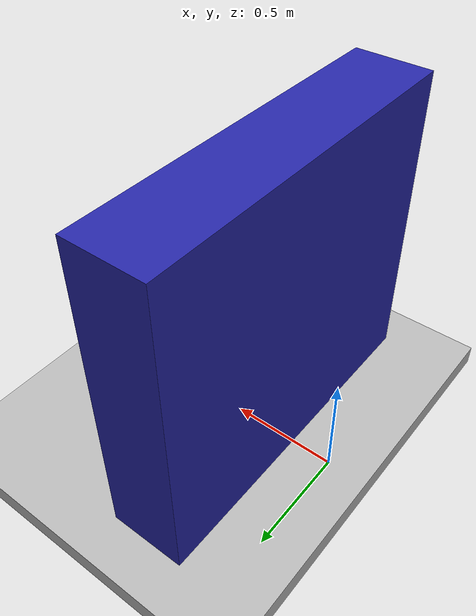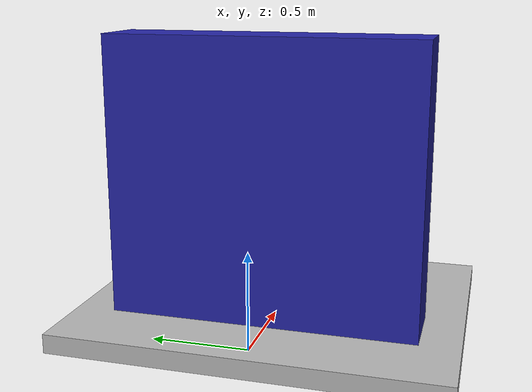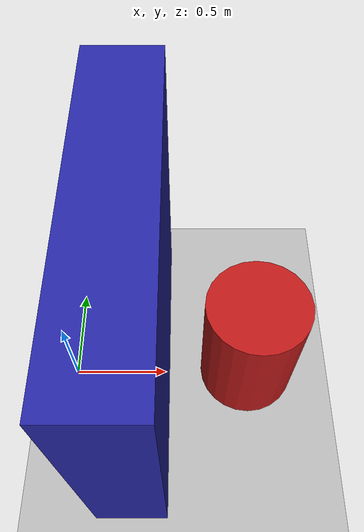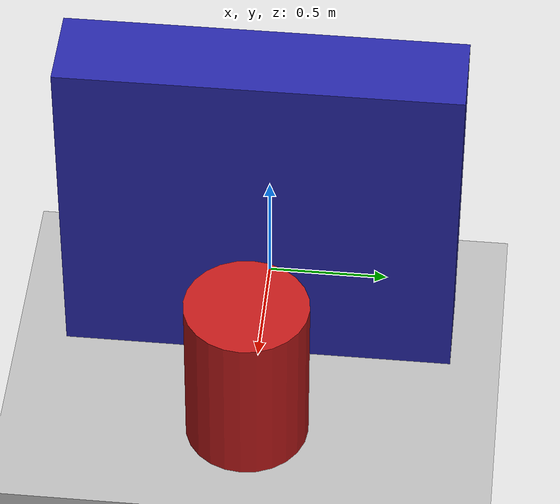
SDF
<?xml version="1.0"?>
<sdf version="1.6">
  <world name="cs625_static">
    <physics name="1ms" type="ignored">
      <max_step_size>0.001</max_step_size><real_time_factor>1.0</real_time_factor>
    </physics>
    <plugin filename="ignition-gazebo-physics-system" name="gz::sim::systems::Physics"/>
    <plugin filename="ignition-gazebo-sensors-system" name="gz::sim::systems::Sensors">
      <render_engine>ogre2</render_engine>
    </plugin>
    <plugin filename="ignition-gazebo-scene-broadcaster-system" name="gz::sim::systems::SceneBroadcaster"/>
    <light type="directional" name="sun">
      <pose>0 0 5 0 0 0</pose><diffuse>0.8 0.8 0.8 1</diffuse><specular>0.2 0.2 0.2 1</specular><direction>-0.5 0.1 -0.9</direction>
    </light>
    <model name="ground_plane"><static>true</static>
      <link name="link"><collision name="c"><geometry><box><size>10 10 0.1</size></box></geometry></collision><visual name="v"><geometry><box><size>10 10 0.1</size></box></geometry></visual></link>
    </model>
    <!-- Fixture camera as render-init trigger; keep at 64x64 1Hz, topic never bridged -->
    <model name="render_trigger"><static>true</static><pose>-10 10 0.5 0 0 0</pose>
      <link name="tlink"><sensor name="tcam" type="rgbd_camera"><camera><horizontal_fov>1.0</horizontal_fov><image><width>64</width><height>64</height></image><clip><near>0.1</near><far>10</far></clip></camera><always_on>1</always_on><update_rate>1</update_rate><visualize>0</visualize><topic>/render_trigger</topic><gz_frame_id>tlink</gz_frame_id></sensor></link>
    </model>
    <!-- Static occlusion scene -->
    <model name="occluder"><static>true</static><pose>0.35 0 0.75 0 0 0</pose>
      <link name="link"><collision name="c"><geometry><box><size>0.35 1.6 1.5</size></box></geometry></collision><visual name="v"><geometry><box><size>0.35 1.6 1.5</size></box></geometry><material><ambient>0.15 0.15 0.65 1</ambient><diffuse>0.15 0.15 0.65 1</diffuse></material></visual></link>
    </model>
    <model name="target_object"><static>true</static><pose>0.95 0 0.4 0 0 0</pose>
      <link name="target_link"><collision name="c"><geometry><cylinder><radius>0.25</radius><length>0.7</length></cylinder></geometry></collision><visual name="v"><geometry><cylinder><radius>0.25</radius><length>0.7</length></cylinder></geometry><material><ambient>0.75 0.1 0.1 1</ambient><diffuse>0.75 0.1 0.1 1</diffuse></material></visual></link>
    </model>
    <!-- ROBOT placeholder — inserted by sed below -->
<sdf version='1.9'>
  <model name='cs625'>
    <joint name='base_joint' type='fixed'>
      <pose relative_to='__model__'>0 0 0 0 0 0</pose>
      <parent>world</parent>
      <child>base_link</child>
    </joint>
    <link name='base_link'>
      <pose relative_to='base_joint'>0 0 0 0 0 0</pose>
      <inertial>
        <pose>-2.4008693014781e-05 0.00117748953656619 0.07629277704746289 0 0 0</pose>
        <mass>1.5056196875401799</mass>
        <inertia>
          <ixx>0.0067828912063113353</ixx>
          <ixy>2.67618063769984e-07</ixy>
          <ixz>-2.5689556417707202e-06</ixz>
          <iyy>0.0068523032153561536</iyy>
          <iyz>9.4262879047866778e-05</iyz>
          <izz>0.0100437671447022</izz>
        </inertia>
      </inertial>
      <collision name='base_link_inertia_collision'>
        <pose>0 0 0 0 0 0</pose>
        <geometry>
          <mesh>
            <scale>1 1 1</scale>
            <uri>file:///home/oy/cs625_underlay_humble/install/eli_cs_robot_description/share/eli_cs_robot_description/meshes/cs625/collision/base.stl</uri>
          </mesh>
        </geometry>
      </collision>
      <visual name='base_link_inertia_visual'>
        <pose>0 0 0 0 0 0</pose>
        <geometry>
          <mesh>
            <scale>1 1 1</scale>
            <uri>file:///home/oy/cs625_underlay_humble/install/eli_cs_robot_description/share/eli_cs_robot_description/meshes/cs625/visual/base.dae</uri>
          </mesh>
        </geometry>
      </visual>
    </link>
    <joint name='shoulder_pan_joint' type='revolute'>
      <pose relative_to='base_link'>0 0 0.231007 0 0 0</pose>
      <parent>base_link</parent>
      <child>shoulder_link</child>
      <axis>
        <xyz>0 0 1</xyz>
        <limit>
          <lower>-6.2831853071795862</lower>
          <upper>6.2831853071795862</upper>
          <effort>730</effort>
          <velocity>2.0943951023931948</velocity>
        </limit>
        <dynamics>
          <damping>0</damping>
          <friction>0</friction>
          <spring_reference>0</spring_reference>
          <spring_stiffness>0</spring_stiffness>
        </dynamics>
      </axis>
    </joint>
    <link name='shoulder_link'>
      <pose relative_to='shoulder_pan_joint'>0 0 0 0 0 0</pose>
      <inertial>
        <pose>9.899999999999999e-05 -0.026311 -0.026723 0 0 0</pose>
        <mass>17.039999999999999</mass>
        <inertia>
          <ixx>0.13028999999999999</ixx>
          <ixy>-8.2709999999999999e-05</ixy>
          <ixz>0.00010670000000000001</ixz>
          <iyy>0.085214999999999999</iyy>
          <iyz>-0.00066335000000000005</iyz>
          <izz>0.11386</izz>
        </inertia>
      </inertial>
      <collision name='shoulder_link_collision'>
        <pose>0 0 0 0 0 0</pose>
        <geometry>
          <mesh>
            <scale>1 1 1</scale>
            <uri>file:///home/oy/cs625_underlay_humble/install/eli_cs_robot_description/share/eli_cs_robot_description/meshes/cs625/collision/shoulder.stl</uri>
          </mesh>
        </geometry>
      </collision>
      <visual name='shoulder_link_visual'>
        <pose>0 0 0 0 0 0</pose>
        <geometry>
          <mesh>
            <scale>1 1 1</scale>
            <uri>file:///home/oy/cs625_underlay_humble/install/eli_cs_robot_description/share/eli_cs_robot_description/meshes/cs625/visual/shoulder.dae</uri>
          </mesh>
        </geometry>
      </visual>
    </link>
    <joint name='shoulder_lift_joint' type='revolute'>
      <pose relative_to='shoulder_link'>0 0 0 1.5707999 0 0</pose>
      <parent>shoulder_link</parent>
      <child>upperarm_link</child>
      <axis>
        <xyz>0 0 1</xyz>
        <limit>
          <lower>-6.2831853071795862</lower>
          <upper>6.2831853071795862</upper>
          <effort>730</effort>
          <velocity>2.0943951023931948</velocity>
        </limit>
        <dynamics>
          <damping>0</damping>
          <friction>0</friction>
          <spring_reference>0</spring_reference>
          <spring_stiffness>0</spring_stiffness>
        </dynamics>
      </axis>
    </joint>
    <link name='upperarm_link'>
      <pose relative_to='shoulder_lift_joint'>0 0 0 0 0 0</pose>
      <inertial>
        <pose>-0.27762 -1.7e-05 0.20184 0 0 0</pose>
        <mass>26.542999999999999</mass>
        <inertia>
          <ixx>1.1970000000000001</ixx>
          <ixy>-0.00083272000000000001</ixy>
          <ixz>-1.5396000000000001</ixz>
          <iyy>6.1116999999999999</iyy>
          <iyz>-0.00015495999999999999</iyz>
          <izz>5.0220000000000002</izz>
        </inertia>
      </inertial>
      <collision name='upperarm_link_collision'>
        <pose>0 0 0 0 0 0</pose>
        <geometry>
          <mesh>
            <scale>1 1 1</scale>
            <uri>file:///home/oy/cs625_underlay_humble/install/eli_cs_robot_description/share/eli_cs_robot_description/meshes/cs625/collision/upperarm.stl</uri>
          </mesh>
        </geometry>
      </collision>
      <visual name='upperarm_link_visual'>
        <pose>0 0 0 0 0 0</pose>
        <geometry>
          <mesh>
            <scale>1 1 1</scale>
            <uri>file:///home/oy/cs625_underlay_humble/install/eli_cs_robot_description/share/eli_cs_robot_description/meshes/cs625/visual/upperarm.dae</uri>
          </mesh>
        </geometry>
      </visual>
    </link>
    <joint name='elbow_joint' type='revolute'>
      <pose relative_to='upperarm_link'>-0.750517 0 0 0 0 0</pose>
      <parent>upperarm_link</parent>
      <child>forearm_link</child>
      <axis>
        <xyz>0 0 1</xyz>
        <limit>
          <lower>-3.1415926535897931</lower>
          <upper>3.1415926535897931</upper>
          <effort>430</effort>
          <velocity>2.617993877991494</velocity>
        </limit>
        <dynamics>
          <damping>0</damping>
          <friction>0</friction>
          <spring_reference>0</spring_reference>
          <spring_stiffness>0</spring_stiffness>
        </dynamics>
      </axis>
    </joint>
    <link name='forearm_link'>
      <pose relative_to='elbow_joint'>0 0 0 0 0 0</pose>
      <inertial>
        <pose>-0.30259 2.1e-05 0.07237 0 0 0</pose>
        <mass>7.8159999999999998</mass>
        <inertia>
          <ixx>0.067796999999999996</ixx>
          <ixy>4.4997000000000003e-05</ixy>
          <ixz>-0.12636</ixz>
          <iyy>1.3409</iyy>
          <iyz>1.45e-05</iyz>
          <izz>1.2907999999999999</izz>
        </inertia>
      </inertial>
      <collision name='forearm_link_collision'>
        <pose>0 0 0 0 0 0</pose>
        <geometry>
          <mesh>
            <scale>1 1 1</scale>
            <uri>file:///home/oy/cs625_underlay_humble/install/eli_cs_robot_description/share/eli_cs_robot_description/meshes/cs625/collision/forearm.stl</uri>
          </mesh>
        </geometry>
      </collision>
      <visual name='forearm_link_visual'>
        <pose>0 0 0 0 0 0</pose>
        <geometry>
          <mesh>
            <scale>1 1 1</scale>
            <uri>file:///home/oy/cs625_underlay_humble/install/eli_cs_robot_description/share/eli_cs_robot_description/meshes/cs625/visual/forearm.dae</uri>
          </mesh>
        </geometry>
      </visual>
    </link>
    <joint name='wrist_1_joint' type='revolute'>
      <pose relative_to='forearm_link'>-0.623098 0 0.171144 0 0 0</pose>
      <parent>forearm_link</parent>
      <child>wrist_1_link</child>
      <axis>
        <xyz>0 0 1</xyz>
        <limit>
          <lower>-6.2831853071795862</lower>
          <upper>6.2831853071795862</upper>
          <effort>100</effort>
          <velocity>3.6651914291880918</velocity>
        </limit>
        <dynamics>
          <damping>0</damping>
          <friction>0</friction>
          <spring_reference>0</spring_reference>
          <spring_stiffness>0</spring_stiffness>
        </dynamics>
      </axis>
    </joint>
    <link name='wrist_1_link'>
      <pose relative_to='wrist_1_joint'>0 0 0 0 0 0</pose>
      <inertial>
        <pose>-3.7e-05 -0.01051 -0.014865 0 0 0</pose>
        <mass>3.0950000000000002</mass>
        <inertia>
          <ixx>0.0079583999999999992</ixx>
          <ixy>-3.0240000000000002e-06</ixy>
          <ixz>5.7339999999999996e-06</ixz>
          <iyy>0.0066863000000000001</iyy>
          <iyz>1.766e-05</iyz>
          <izz>0.0048406999999999999</izz>
        </inertia>
      </inertial>
      <collision name='wrist_1_link_collision'>
        <pose>0 0 0 0 0 0</pose>
        <geometry>
          <mesh>
            <scale>1 1 1</scale>
            <uri>file:///home/oy/cs625_underlay_humble/install/eli_cs_robot_description/share/eli_cs_robot_description/meshes/cs625/collision/wrist1.stl</uri>
          </mesh>
        </geometry>
      </collision>
      <visual name='wrist_1_link_visual'>
        <pose>0 0 0 0 0 0</pose>
        <geometry>
          <mesh>
            <scale>1 1 1</scale>
            <uri>file:///home/oy/cs625_underlay_humble/install/eli_cs_robot_description/share/eli_cs_robot_description/meshes/cs625/visual/wrist1.dae</uri>
          </mesh>
        </geometry>
      </visual>
    </link>
    <joint name='wrist_2_joint' type='revolute'>
      <pose relative_to='wrist_1_link'>0 -0.127906 0 1.5707999 0 0</pose>
      <parent>wrist_1_link</parent>
      <child>wrist_2_link</child>
      <axis>
        <xyz>0 0 1</xyz>
        <limit>
          <lower>-6.2831853071795862</lower>
          <upper>6.2831853071795862</upper>
          <effort>100</effort>
          <velocity>3.6651914291880918</velocity>
        </limit>
        <dynamics>
          <damping>0</damping>
          <friction>0</friction>
          <spring_reference>0</spring_reference>
          <spring_stiffness>0</spring_stiffness>
        </dynamics>
      </axis>
    </joint>
    <link name='wrist_2_link'>
      <pose relative_to='wrist_2_joint'>0 0 0 0 0 0</pose>
      <inertial>
        <pose>3.7e-05 0.01051 -0.014865 0 0 0</pose>
        <mass>3.0950000000000002</mass>
        <inertia>
          <ixx>0.0079584129999999993</ixx>
          <ixy>-3.0240000000000002e-06</ixy>
          <ixz>5.7339999999999996e-06</ixz>
          <iyy>0.0066863479999999999</iyy>
          <iyz>1.766e-05</iyz>
          <izz>0.0048406710000000004</izz>
        </inertia>
      </inertial>
      <collision name='wrist_2_link_collision'>
        <pose>0 0 0 0 0 0</pose>
        <geometry>
          <mesh>
            <scale>1 1 1</scale>
            <uri>file:///home/oy/cs625_underlay_humble/install/eli_cs_robot_description/share/eli_cs_robot_description/meshes/cs625/collision/wrist2.stl</uri>
          </mesh>
        </geometry>
      </collision>
      <visual name='wrist_2_link_visual'>
        <pose>0 0 0 0 0 0</pose>
        <geometry>
          <mesh>
            <scale>1 1 1</scale>
            <uri>file:///home/oy/cs625_underlay_humble/install/eli_cs_robot_description/share/eli_cs_robot_description/meshes/cs625/visual/wrist2.dae</uri>
          </mesh>
        </geometry>
      </visual>
    </link>
    <joint name='wrist_3_joint' type='revolute'>
      <pose relative_to='wrist_2_link'>0 0.127478 0 -1.5707999 0 0</pose>
      <parent>wrist_2_link</parent>
      <child>wrist_3_link</child>
      <axis>
        <xyz>0 0 1</xyz>
        <limit>
          <lower>-6.2831853071795862</lower>
          <upper>6.2831853071795862</upper>
          <effort>100</effort>
          <velocity>3.6651914291880918</velocity>
        </limit>
        <dynamics>
          <damping>0</damping>
          <friction>0</friction>
          <spring_reference>0</spring_reference>
          <spring_stiffness>0</spring_stiffness>
        </dynamics>
      </axis>
    </joint>
    <link name='wrist_3_link'>
      <pose relative_to='wrist_3_joint'>0 0 0 0 0 0</pose>
      <inertial>
        <pose>0.0002842722159730034 -0.001178591676040495 -0.04532164004499438 0 0 0</pose>
        <mass>0.88900000000000001</mass>
        <inertia>
          <ixx>0.0060996539955375916</ixx>
          <ixy>1.51407085248144e-05</ixy>
          <ixz>-2.8300927232890902e-05</ixz>
          <iyy>0.0060943005837749394</iyy>
          <iyz>3.6808006050663677e-05</iyz>
          <izz>0.001171545685862902</izz>
        </inertia>
      </inertial>
      <collision name='wrist_3_link_collision'>
        <pose>0 0 0 0 0 0</pose>
        <geometry>
          <mesh>
            <scale>1 1 1</scale>
            <uri>file:///home/oy/cs625_underlay_humble/install/eli_cs_robot_description/share/eli_cs_robot_description/meshes/cs625/collision/wrist3.stl</uri>
          </mesh>
        </geometry>
      </collision>
      <collision name='wrist_3_link_fixed_joint_lump__my_end_effector_link_collision_1'>
        <pose>-0.046 0 0.353 0 0 0</pose>
        <geometry>
          <mesh>
            <scale>0.001 0.001 0.001</scale>
            <uri>file:///home/oy/cs625_underlay_humble/install/eli_cs_robot_description/share/eli_cs_robot_description/meshes/visual/tool0_collision.STL</uri>
          </mesh>
        </geometry>
      </collision>
      <collision name='wrist_3_link_fixed_joint_lump__camera_link_collision_2'>
        <pose>0.004000000000000004 0 0.403 0 0.785398163397 0</pose>
        <geometry>
          <box>
            <size>0.03 0.05 0.02</size>
          </box>
        </geometry>
        <surface>
          <contact>
            <ode/>
          </contact>
          <friction>
            <ode/>
          </friction>
        </surface>
      </collision>
      <visual name='wrist_3_link_visual'>
        <pose>0 0 0 0 0 0</pose>
        <geometry>
          <mesh>
            <scale>1 1 1</scale>
            <uri>file:///home/oy/cs625_underlay_humble/install/eli_cs_robot_description/share/eli_cs_robot_description/meshes/cs625/visual/wrist3.dae</uri>
          </mesh>
        </geometry>
      </visual>
      <visual name='wrist_3_link_fixed_joint_lump__my_end_effector_link_visual_1'>
        <pose>-0.046 0 0.353 0 0 0</pose>
        <geometry>
          <mesh>
            <scale>0.001 0.001 0.001</scale>
            <uri>file:///home/oy/cs625_underlay_humble/install/eli_cs_robot_description/share/eli_cs_robot_description/meshes/visual/tool0_vision.STL</uri>
          </mesh>
        </geometry>
        <material>
          <diffuse>0.9375 0.9375 0.9375 1</diffuse>
          <ambient>0.9375 0.9375 0.9375 1</ambient>
        </material>
      </visual>
      <visual name='wrist_3_link_fixed_joint_lump__camera_link_visual_2'>
        <pose>0.004000000000000004 0 0.403 0 0.785398163397 0</pose>
        <geometry>
          <box>
            <size>0.03 0.05 0.02</size>
          </box>
        </geometry>
        <material>
          <diffuse>0.25 0.25 0.25 1</diffuse>
          <ambient>0.25 0.25 0.25 1</ambient>
        </material>
      </visual>
      <sensor name='camera_sensor' type='rgbd_camera'>
        <always_on>true</always_on>
        <update_rate>15</update_rate>
        <visualize>false</visualize>
        <camera>
          <horizontal_fov>1.0469999999999999</horizontal_fov>
          <image>
            <width>640</width>
            <height>480</height>
            <format>R8G8B8</format>
          </image>
          <clip>
            <near>0.050000000000000003</near>
            <far>5</far>
          </clip>
        </camera>
        <topic>camera</topic>
        <pose>0.004 0 0.403 0 0.785398 0</pose>
        <gz_frame_id>camera_link</gz_frame_id>
      </sensor>
    </link>
    <plugin name='gz_ros2_control::GazeboSimROS2ControlPlugin' filename='gz_ros2_control-system'>

      <parameters>/home/oy/cs625_colcon/install/cs625_bringup/share/cs625_bringup/config/sim_controllers.yaml</parameters>
      <controller_manager_name>/controller_manager</controller_manager_name>
    </plugin>
    <frame name='base_link-base_fixed_joint' attached_to='base_link'>
      <pose>0 0 0 0 -0 0</pose>
    </frame>
    <frame name='base' attached_to='base_link-base_fixed_joint'/>
    <frame name='base_link-base_link_inertia' attached_to='base_link'>
      <pose>0 0 0 0 -0 0</pose>
    </frame>
    <frame name='base_link_inertia' attached_to='base_link-base_link_inertia'/>
    <frame name='camera_to_color_optical' attached_to='camera_link'>
      <pose>0 0 0 -1.5708 -0 -1.5708</pose>
    </frame>
    <frame name='camera_color_optical_frame' attached_to='camera_to_color_optical'/>
    <frame name='camera_to_depth_optical' attached_to='camera_link'>
      <pose>0 0 0 -1.5708 -0 -1.5708</pose>
    </frame>
    <frame name='camera_depth_optical_frame' attached_to='camera_to_depth_optical'/>
    <frame name='camera_mount_to_camera' attached_to='camera_mount_link'>
      <pose>0 0 0 0 -0 0</pose>
    </frame>
    <frame name='camera_link' attached_to='camera_mount_to_camera'/>
    <frame name='tool0_to_camera_mount' attached_to='tool0'>
      <pose>0.05 0 0.05 0 0.785398 0</pose>
    </frame>
    <frame name='camera_mount_link' attached_to='tool0_to_camera_mount'/>
    <frame name='eef_to_tool0' attached_to='my_end_effector_link'>
      <pose>0 0 0 0 -0 0</pose>
    </frame>
    <frame name='tool0' attached_to='eef_to_tool0'/>
    <frame name='flange_to_eef_joint' attached_to='flange'>
      <pose>-0.046 0 0.353 0 -0 0</pose>
    </frame>
    <frame name='my_end_effector_link' attached_to='flange_to_eef_joint'/>
    <frame name='wrist_3-flange' attached_to='wrist_3_link'>
      <pose>0 0 0 0 -0 0</pose>
    </frame>
    <frame name='flange' attached_to='wrist_3-flange'/>
    <frame name='wrist_3_link-ft_frame' attached_to='wrist_3_link'>
      <pose>0 0 0 0 -0 0</pose>
    </frame>
    <frame name='ft_frame' attached_to='wrist_3_link-ft_frame'/>
  </model>
</sdf>

  </world>
</sdf>
